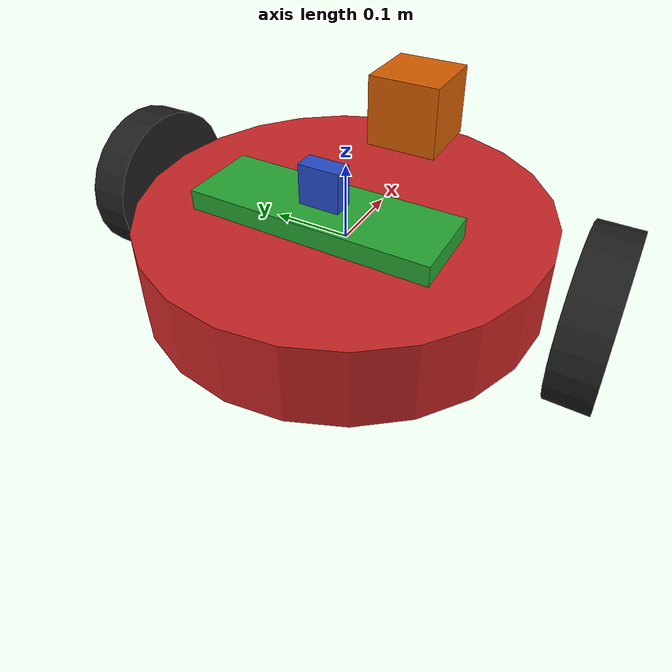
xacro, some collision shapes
<?xml version='1.0'?>

<robot name="my_robot" xmlns:xacro="http://www.ros.org/wiki/xacro">
<xacro:include filename="$(find my_robot)/urdf/my_robot.gazebo" />

  <link name="robot_footprint"></link>

  <joint name="robot_footprint_joint" type="fixed">
    <origin xyz="0 0 0" rpy="0 0 0" />
    <parent link="robot_footprint"/>
    <child link="chassis" />
  </joint>

  <link name='chassis'>
    <pose>0 0 0.1 0 0 0</pose>

    <inertial>
      <mass value="15.0"/>
      <origin xyz="0.0 0 0" rpy=" 0 0 0"/>
      <inertia
          ixx="0.1" ixy="0" ixz="0"
          iyy="0.1" iyz="0"
          izz="0.1"
      />
    </inertial>

    <collision name='collision'>
      <origin xyz="0 0 0" rpy=" 0 0 0"/>
      <geometry>
        <cylinder radius="0.25" length="0.1"/>
      </geometry>
    </collision>

    <visual name='chassis_visual'>
      <origin xyz="0 0 0" rpy=" 0 0 0"/>
      <geometry>
        <cylinder radius="0.25" length="0.1"/>
      </geometry>
    </visual>

    <collision name='back_caster_collision'>
      <origin xyz="-0.15 0 -0.05" rpy=" 0 0 0"/>
      <geometry>
        <sphere radius="0.0499"/>
      </geometry>
    </collision>

    <visual name='back_caster_visual'>
      <origin xyz="-0.15 0 -0.05" rpy=" 0 0 0"/>
      <geometry>
        <sphere radius="0.05"/>
      </geometry>
    </visual>

    <collision name='front_caster_collision'>
      <origin xyz="0.15 0 -0.05" rpy=" 0 0 0"/>
      <geometry>
        <sphere radius="0.0499"/>
      </geometry>
    </collision>

    <visual name='front_caster_visual'>
      <origin xyz="0.15 0 -0.05" rpy=" 0 0 0"/>
      <geometry>
        <sphere radius="0.05"/>
      </geometry>
    </visual>

  </link>

  <link name="left_wheel">
    <inertial>
      <mass value="5"/>
      <origin xyz="0.0 0 0" rpy="0 1.5707 1.5707"/>
      <inertia
         ixx="0.1" ixy="0" ixz="0"
         iyy="0.1" iyz="0"
         izz="0.1"
      />
    </inertial>

    <collision name="left_wheel_collision">
      <origin xyz="0.0 0 0" rpy="0 1.5707 1.5707"/>
      <geometry>
        <cylinder radius="0.1" length="0.05"/>
      </geometry>
    </collision>

    <visual name="left_wheel_visual">
      <origin xyz="0.0 0 0" rpy="0 1.5707 1.5707"/>
      <geometry>
        <cylinder radius="0.1" length="0.05"/>
      </geometry>
    </visual>
  </link>

  <link name="right_wheel">
    <inertial>
      <mass value="5"/>
      <origin xyz="0.0 0 0" rpy="0 1.5707 1.5707"/>
      <inertia
         ixx="0.1" ixy="0" ixz="0"
         iyy="0.1" iyz="0"
         izz="0.1"
      />
    </inertial>

    <collision name="right_wheel_collision">
      <origin xyz="0.0 0 0" rpy="0 1.5707 1.5707"/>
      <geometry>
        <cylinder radius="0.1" length="0.05"/>
      </geometry>
    </collision>

    <visual name="right_wheel_visual">
      <origin xyz="0.0 0 0" rpy="0 1.5707 1.5707"/>
      <geometry>
        <cylinder radius="0.1" length="0.05"/>
      </geometry>
    </visual>
  </link>

  <joint type="continuous" name="left_wheel_hinge">
    <origin xyz="0 0.3 0" rpy="0 0 0"/>
    <child link="left_wheel"/>
    <parent link="chassis"/>
    <axis xyz="0 1 0" rpy="0 0 0"/>
    <limit effort="10000" velocity="1000"/>
    <dynamics damping="1.0" friction="1.0"/>
  </joint>

  <joint type="continuous" name="right_wheel_hinge">
    <origin xyz="0 -0.3 0" rpy="0 0 0"/>
    <child link="right_wheel"/>
    <parent link="chassis"/>
    <axis xyz="0 1 0" rpy="0 0 0"/>
    <limit effort="10000" velocity="1000"/>
    <dynamics damping="1.0" friction="1.0"/>
  </joint>

  <link name="camera">
    <inertial>
      <mass value="0.1"/>
      <origin xyz="0 0 0" rpy="0 0 0"/>
      <inertia
         ixx="1e-6" ixy="0" ixz="0"
         iyy="1e-6" iyz="0"
         izz="1e-6"
      />
    </inertial>

    <collision name="camera_collision">
      <origin xyz="0 0 0" rpy="0 0 0"/>
      <geometry>
        <box size="0.05 0.05 0.05"/>
      </geometry>
    </collision>

    <visual name="camera_visual">
      <origin xyz="0 0 0" rpy="0 0 0"/>
      <geometry>
        <box size="0.05 0.05 0.05"/>
      </geometry>
    </visual>
  </link>

  <joint type="fixed" name="camera_joint">
    <origin xyz="0.25 0 0" rpy="0 0 0"/>
    <child link="camera"/>
    <parent link="chassis"/>
    <axis xyz="0 1 0"/>
  </joint>

  <link name="hokuyo">
    <inertial>
      <mass value="1e-5"/>
      <origin xyz="0 0 0" rpy="0 0 0"/>
      <inertia
        ixx="1e-6" ixy="0" ixz="0"
        iyy="1e-6" iyz="0"
        izz="1e-6"
      />
    </inertial>
    <visual name="hokuyo_visual">
      <origin xyz="0 0 0" rpy="0 0 0"/>
      <geometry>
        <mesh filename="package://my_robot/meshes/hokuyo.dae"/>
      </geometry>
    </visual>
    <collision name="hokuyo_collision">
      <origin xyz="0 0 0" rpy="0 0 0"/>
      <geometry>
        <box size="0.1 0.1 0.1"/>
      </geometry>
    </collision>
  </link>

  <joint type="fixed" name="hokuyo_joint">
    <origin xyz="0.20 0 0.1" rpy="0 0 0"/>
    <child link="hokuyo"/>
    <parent link="chassis"/>
    <axis xyz="0 1 0"/>
  </joint>

  <link name="green_board">
    <inertial>
      <mass value="1e-5"/>
      <origin xyz="0 0 0" rpy="0 0 0"/>
      <inertia
        ixx="1e-6" ixy="0" ixz="0"
        iyy="1e-6" iyz="0"
        izz="1e-6"
      />
    </inertial>
    <visual name="green_board_visual">
      <origin xyz="0 0 0" rpy="0 0 0"/>
      <geometry>
	<box size="0.1 0.3 0.05"/>
      </geometry>
    </visual>
    <collision name="green_board_collision">
      <origin xyz="0 0 0" rpy="0 0 0"/>
      <geometry>
	<box size="0.1 0.3 0.05"/>
      </geometry>
    </collision>
  </link>

  <joint type="fixed" name="green_board_joint">
    <origin xyz="-0.05 0 0.05" rpy="0 0 0"/>
    <child link="green_board"/>
    <parent link="chassis"/>
    <axis xyz="0 1 0"/>
  </joint>

  <link name="blue_board">
    <inertial>
      <mass value="1e-5"/>
      <origin xyz="0 0 0" rpy="0 0 0"/>
      <inertia
        ixx="1e-6" ixy="0" ixz="0"
        iyy="1e-6" iyz="0"
        izz="1e-6"
      />
    </inertial>
    <visual name="blue_board_visual">
      <origin xyz="0 0 0" rpy="0 0 0"/>
      <geometry>
	<box size="0.025 0.05 0.05"/>
      </geometry>
    </visual>
    <collision name="blue_board_collision">
      <origin xyz="0 0 0" rpy="0 0 0"/>
      <geometry>
	<box size="0.025 0.05 0.05"/>
      </geometry>
    </collision>
  </link>

  <joint type="fixed" name="blue_board_joint">
    <origin xyz="-0.05 0 0.10" rpy="0 0 0"/>
    <child link="blue_board"/>
    <parent link="chassis"/>
    <axis xyz="0 1 0"/>
  </joint>

  <joint name="camera_optical_joint" type="fixed">
    <origin xyz="0 0 0" rpy="-1.5707 0 -1.5707"/>
    <parent link="camera"/>
    <child link="camera_link_optical"/>
  </joint>

  <link name="camera_link_optical">
  </link>

  <gazebo reference="left_wheel">
    <material>Gazebo/Black</material>
  </gazebo>
  <gazebo reference="right_wheel">
    <material>Gazebo/Black</material>
  </gazebo>
  <gazebo reference="chassis">
    <material>Gazebo/Red</material>
  </gazebo>
  <gazebo reference="camera">
    <material>Gazebo/Orange</material>
  </gazebo>
  <gazebo reference="green_board">
    <material>Gazebo/Green</material>
  </gazebo>
  <gazebo reference="blue_board">
    <material>Gazebo/Blue</material>
  </gazebo>

</robot>
